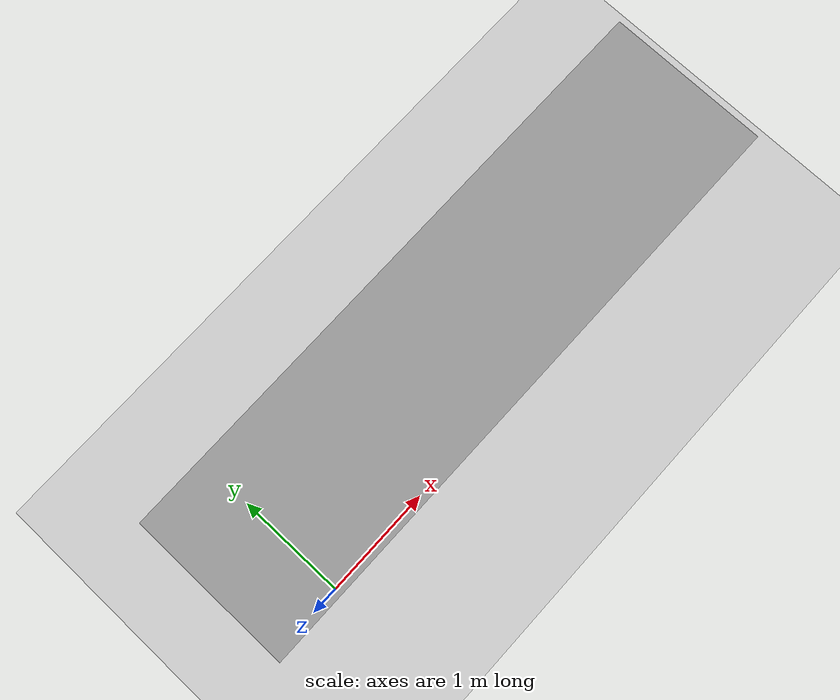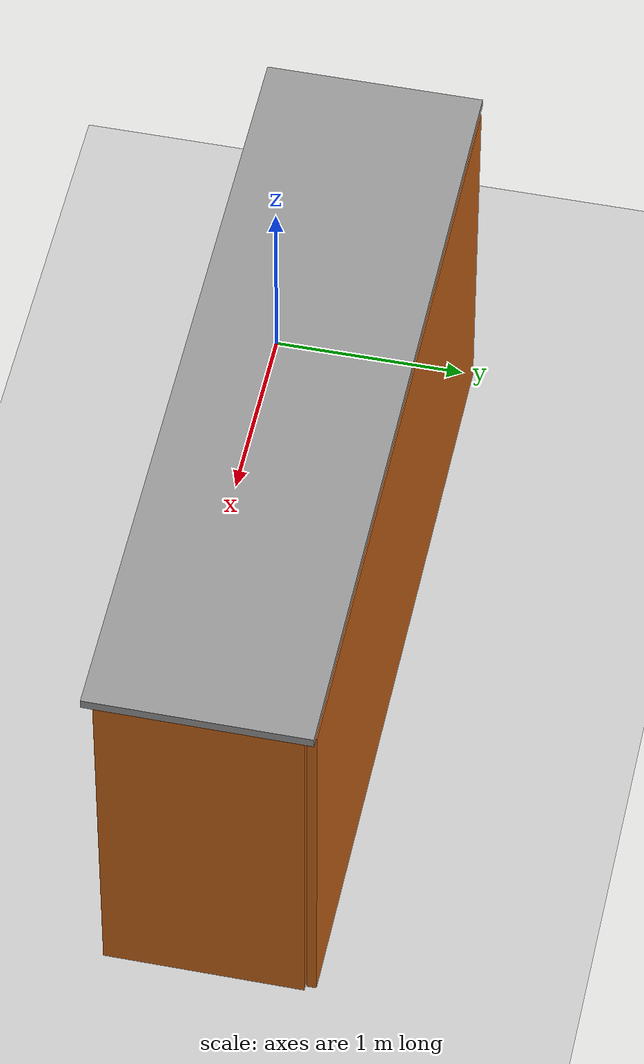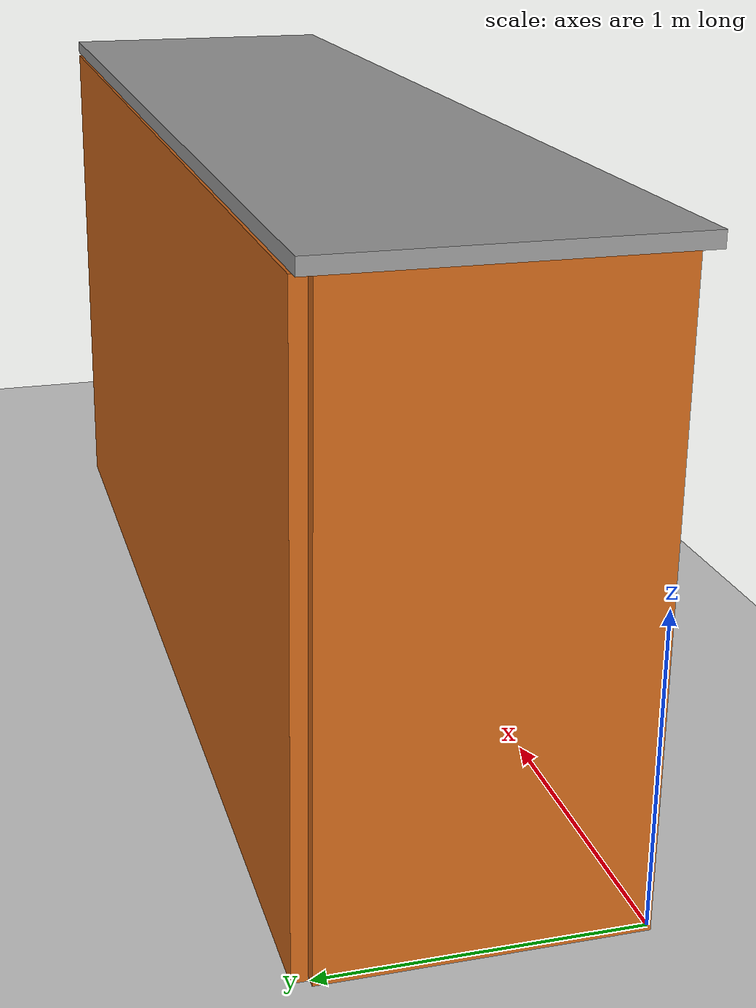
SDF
<?xml version="1.0" ?>
<sdf version="1.4">
  <world name="default">
    <include>
      <uri>model://ground_plane</uri>
    </include>
    <include>
      <uri>model://sun</uri>
    </include>

   <model name='MBRL_field'>
      <link name='link_1'>
        <inertial>
          <mass>10</mass>
          <inertia>
            <ixx>4.16667</ixx>
            <ixy>0</ixy>
            <ixz>0</ixz>
            <iyy>3.33542</iyy>
            <iyz>0</iyz>
            <izz>0.835417</izz>
          </inertia>
          <pose frame=''>0 0 0 0 -0 0</pose>
        </inertial>
        <pose frame=''>-2 -0.166667 -0 0 -0 0</pose>
        <gravity>1</gravity>
        <self_collide>0</self_collide>
        <kinematic>0</kinematic>
        <enable_wind>0</enable_wind>
        <visual name='visual'>
          <pose frame=''>0 0 0 0 -0 0</pose>
          <geometry>
            <box>
              <size>0.05 1 2</size>
            </box>
          </geometry>
          <material>
            <lighting>1</lighting>
            <script>
              <uri>file://media/materials/scripts/gazebo.material</uri>
              <name>Gazebo/Grey</name>
            </script>
            <shader type='pixel'>
              <normal_map>__default__</normal_map>
            </shader>
            <ambient>0.8 0.4 0.1 1</ambient>
            <diffuse>0.7 0.7 0.7 1</diffuse>
            <specular>0.01 0.01 0.01 1</specular>
            <emissive>0 0 0 1</emissive>
          </material>
          <transparency>0</transparency>
          <cast_shadows>1</cast_shadows>
        </visual>
        <collision name='collision'>
          <laser_retro>0</laser_retro>
          <max_contacts>10</max_contacts>
          <pose frame=''>0 0 0 0 -0 0</pose>
          <geometry>
            <box>
              <size>0.05 1 2</size>
            </box>
          </geometry>
          <surface>
            <friction>
              <ode>
                <mu>1</mu>
                <mu2>1</mu2>
                <fdir1>0 0 0</fdir1>
                <slip1>0</slip1>
                <slip2>0</slip2>
              </ode>
              <torsional>
                <coefficient>1</coefficient>
                <patch_radius>0</patch_radius>
                <surface_radius>0</surface_radius>
                <use_patch_radius>1</use_patch_radius>
                <ode>
                  <slip>0</slip>
                </ode>
              </torsional>
            </friction>
            <bounce>
              <restitution_coefficient>0</restitution_coefficient>
              <threshold>1e+06</threshold>
            </bounce>
            <contact>
              <collide_without_contact>0</collide_without_contact>
              <collide_without_contact_bitmask>1</collide_without_contact_bitmask>
              <collide_bitmask>1</collide_bitmask>
              <ode>
                <soft_cfm>0</soft_cfm>
                <soft_erp>0.2</soft_erp>
                <kp>1e+13</kp>
                <kd>1</kd>
                <max_vel>0.01</max_vel>
                <min_depth>0</min_depth>
              </ode>
              <bullet>
                <split_impulse>1</split_impulse>
                <split_impulse_penetration_threshold>-0.01</split_impulse_penetration_threshold>
                <soft_cfm>0</soft_cfm>
                <soft_erp>0.2</soft_erp>
                <kp>1e+13</kp>
                <kd>1</kd>
              </bullet>
            </contact>
          </surface>
        </collision>
      </link>
      <link name='link_0'>
        <inertial>
          <mass>1</mass>
          <inertia>
            <ixx>0.166667</ixx>
            <ixy>0</ixy>
            <ixz>0</ixz>
            <iyy>0.166667</iyy>
            <iyz>0</iyz>
            <izz>0.166667</izz>
          </inertia>
          <pose frame=''>0 0 0 0 -0 0</pose>
        </inertial>
        <pose frame=''>-0 -0.166667 1.03 -2e-06 -2e-06 3e-06</pose>
        <gravity>0</gravity>
        <self_collide>0</self_collide>
        <kinematic>0</kinematic>
        <enable_wind>0</enable_wind>
        <visual name='visual'>
          <pose frame=''>0 0 0 0 -0 0</pose>
          <geometry>
            <box>
              <size>4.1 1.1 0.05</size>
            </box>
          </geometry>
          <material>
            <lighting>1</lighting>
            <script>
              <uri>file://media/materials/scripts/gazebo.material</uri>
              <name>Gazebo/Grey</name>
            </script>
            <shader type='pixel'>
              <normal_map>__default__</normal_map>
            </shader>
            <ambient>0.3 0.3 0.3 1</ambient>
            <diffuse>0.7 0.7 0.7 1</diffuse>
            <specular>0.01 0.01 0.01 1</specular>
            <emissive>0 0 0 1</emissive>
          </material>
          <transparency>0</transparency>
          <cast_shadows>1</cast_shadows>
        </visual>
        <collision name='collision'>
          <laser_retro>0</laser_retro>
          <max_contacts>10</max_contacts>
          <pose frame=''>0 0 0 0 -0 0</pose>
          <geometry>
            <box>
              <size>4.1 1.1 0.05</size>
            </box>
          </geometry>
          <surface>
            <friction>
              <ode>
                <mu>1</mu>
                <mu2>1</mu2>
                <fdir1>0 0 0</fdir1>
                <slip1>0</slip1>
                <slip2>0</slip2>
              </ode>
              <torsional>
                <coefficient>1</coefficient>
                <patch_radius>0</patch_radius>
                <surface_radius>0</surface_radius>
                <use_patch_radius>1</use_patch_radius>
                <ode>
                  <slip>0</slip>
                </ode>
              </torsional>
            </friction>
            <bounce>
              <restitution_coefficient>0</restitution_coefficient>
              <threshold>1e+06</threshold>
            </bounce>
            <contact>
              <collide_without_contact>0</collide_without_contact>
              <collide_without_contact_bitmask>1</collide_without_contact_bitmask>
              <collide_bitmask>1</collide_bitmask>
              <ode>
                <soft_cfm>0</soft_cfm>
                <soft_erp>0.2</soft_erp>
                <kp>1e+13</kp>
                <kd>1</kd>
                <max_vel>0.01</max_vel>
                <min_depth>0</min_depth>
              </ode>
              <bullet>
                <split_impulse>1</split_impulse>
                <split_impulse_penetration_threshold>-0.01</split_impulse_penetration_threshold>
                <soft_cfm>0</soft_cfm>
                <soft_erp>0.2</soft_erp>
                <kp>1e+13</kp>
                <kd>1</kd>
              </bullet>
            </contact>
          </surface>
        </collision>
      </link>
      <link name='link_1_clone'>
        <inertial>
          <mass>10</mass>
          <inertia>
            <ixx>4.16667</ixx>
            <ixy>0</ixy>
            <ixz>0</ixz>
            <iyy>3.33542</iyy>
            <iyz>0</iyz>
            <izz>0.835417</izz>
          </inertia>
          <pose frame=''>0 0 0 0 -0 0</pose>
        </inertial>
        <pose frame=''>2 -0.166667 0 0 -0 0</pose>
        <gravity>1</gravity>
        <self_collide>0</self_collide>
        <kinematic>0</kinematic>
        <enable_wind>0</enable_wind>
        <visual name='visual'>
          <pose frame=''>0 0 0 0 -0 0</pose>
          <geometry>
            <box>
              <size>0.05 1 2</size>
            </box>
          </geometry>
          <material>
            <lighting>1</lighting>
            <script>
              <uri>file://media/materials/scripts/gazebo.material</uri>
              <name>Gazebo/Grey</name>
            </script>
            <shader type='pixel'>
              <normal_map>__default__</normal_map>
            </shader>
            <ambient>0.8 0.4 0.1 1</ambient>
            <diffuse>0.7 0.7 0.7 1</diffuse>
            <specular>0.01 0.01 0.01 1</specular>
            <emissive>0 0 0 1</emissive>
          </material>
          <transparency>0</transparency>
          <cast_shadows>1</cast_shadows>
        </visual>
        <collision name='collision'>
          <laser_retro>0</laser_retro>
          <max_contacts>10</max_contacts>
          <pose frame=''>0 0 0 0 -0 0</pose>
          <geometry>
            <box>
              <size>0.05 1 2</size>
            </box>
          </geometry>
          <surface>
            <friction>
              <ode>
                <mu>1</mu>
                <mu2>1</mu2>
                <fdir1>0 0 0</fdir1>
                <slip1>0</slip1>
                <slip2>0</slip2>
              </ode>
              <torsional>
                <coefficient>1</coefficient>
                <patch_radius>0</patch_radius>
                <surface_radius>0</surface_radius>
                <use_patch_radius>1</use_patch_radius>
                <ode>
                  <slip>0</slip>
                </ode>
              </torsional>
            </friction>
            <bounce>
              <restitution_coefficient>0</restitution_coefficient>
              <threshold>1e+06</threshold>
            </bounce>
            <contact>
              <collide_without_contact>0</collide_without_contact>
              <collide_without_contact_bitmask>1</collide_without_contact_bitmask>
              <collide_bitmask>1</collide_bitmask>
              <ode>
                <soft_cfm>0</soft_cfm>
                <soft_erp>0.2</soft_erp>
                <kp>1e+13</kp>
                <kd>1</kd>
                <max_vel>0.01</max_vel>
                <min_depth>0</min_depth>
              </ode>
              <bullet>
                <split_impulse>1</split_impulse>
                <split_impulse_penetration_threshold>-0.01</split_impulse_penetration_threshold>
                <soft_cfm>0</soft_cfm>
                <soft_erp>0.2</soft_erp>
                <kp>1e+13</kp>
                <kd>1</kd>
              </bullet>
            </contact>
          </surface>
        </collision>
      </link>
      <link name='link_2'>
        <inertial>
          <mass>10</mass>
          <inertia>
            <ixx>3.33542</ixx>
            <ixy>0</ixy>
            <ixz>0</ixz>
            <iyy>16.6667</iyy>
            <iyz>0</iyz>
            <izz>13.3354</izz>
          </inertia>
          <pose frame=''>0 0 0 0 -0 0</pose>
        </inertial>
        <pose frame=''>-0 0.363333 0 0 -0 0</pose>
        <gravity>1</gravity>
        <self_collide>0</self_collide>
        <kinematic>0</kinematic>
        <enable_wind>0</enable_wind>
        <visual name='visual'>
          <pose frame=''>0 0 0 0 -0 0</pose>
          <geometry>
            <box>
              <size>4 0.05 2</size>
            </box>
          </geometry>
          <material>
            <lighting>1</lighting>
            <script>
              <uri>file://media/materials/scripts/gazebo.material</uri>
              <name>Gazebo/Grey</name>
            </script>
            <shader type='pixel'>
              <normal_map>__default__</normal_map>
            </shader>
            <ambient>0.8 0.4 0.1 1</ambient>
            <diffuse>0.7 0.7 0.7 1</diffuse>
            <specular>0.01 0.01 0.01 1</specular>
            <emissive>0 0 0 1</emissive>
          </material>
          <transparency>0</transparency>
          <cast_shadows>1</cast_shadows>
        </visual>
        <collision name='collision'>
          <laser_retro>0</laser_retro>
          <max_contacts>10</max_contacts>
          <pose frame=''>0 0 0 0 -0 0</pose>
          <geometry>
            <box>
              <size>4 0.05 2</size>
            </box>
          </geometry>
          <surface>
            <friction>
              <ode>
                <mu>1</mu>
                <mu2>1</mu2>
                <fdir1>0 0 0</fdir1>
                <slip1>0</slip1>
                <slip2>0</slip2>
              </ode>
              <torsional>
                <coefficient>1</coefficient>
                <patch_radius>0</patch_radius>
                <surface_radius>0</surface_radius>
                <use_patch_radius>1</use_patch_radius>
                <ode>
                  <slip>0</slip>
                </ode>
              </torsional>
            </friction>
            <bounce>
              <restitution_coefficient>0</restitution_coefficient>
              <threshold>1e+06</threshold>
            </bounce>
            <contact>
              <collide_without_contact>0</collide_without_contact>
              <collide_without_contact_bitmask>1</collide_without_contact_bitmask>
              <collide_bitmask>1</collide_bitmask>
              <ode>
                <soft_cfm>0</soft_cfm>
                <soft_erp>0.2</soft_erp>
                <kp>1e+13</kp>
                <kd>1</kd>
                <max_vel>0.01</max_vel>
                <min_depth>0</min_depth>
              </ode>
              <bullet>
                <split_impulse>1</split_impulse>
                <split_impulse_penetration_threshold>-0.01</split_impulse_penetration_threshold>
                <soft_cfm>0</soft_cfm>
                <soft_erp>0.2</soft_erp>
                <kp>1e+13</kp>
                <kd>1</kd>
              </bullet>
            </contact>
          </surface>
        </collision>
      </link>
      <static>0</static>
      <allow_auto_disable>1</allow_auto_disable>
      <pose frame=''>2 0.666656 0.999997 2e-06 2e-06 -3e-06</pose>
    </model>

    <!-- Only one ROS interface plugin is required per world, as any other plugin can connect a Gazebo
         topic to a ROS topic (or vise versa). -->
    <plugin name="ros_interface_plugin" filename="librotors_gazebo_ros_interface_plugin.so"/>

    <spherical_coordinates>
      <surface_model>EARTH_WGS84</surface_model>
      <latitude_deg>47.3667</latitude_deg>
      <longitude_deg>8.5500</longitude_deg>
      <elevation>500.0</elevation>
      <heading_deg>0</heading_deg>
    </spherical_coordinates>
    <physics type='ode'>
      <ode>
        <solver>
          <type>quick</type>
          <iters>1000</iters>
          <sor>1.3</sor>
        </solver>
        <constraints>
          <cfm>0</cfm>
          <erp>0.2</erp>
          <contact_max_correcting_vel>100</contact_max_correcting_vel>
          <contact_surface_layer>0.001</contact_surface_layer>
        </constraints>
      </ode>
      <max_step_size>0.01</max_step_size>
      <real_time_factor>1</real_time_factor>
      <real_time_update_rate>100</real_time_update_rate>
      <gravity>0 0 -9.8</gravity>
    </physics>
    <scene>
      <shadows>false</shadows>
    </scene>

    <gui>
    <camera name="user_camera">
      <pose>2.0 -5 1.0 0 0 1.578</pose>
    </camera>
    </gui>

  </world>
</sdf>
